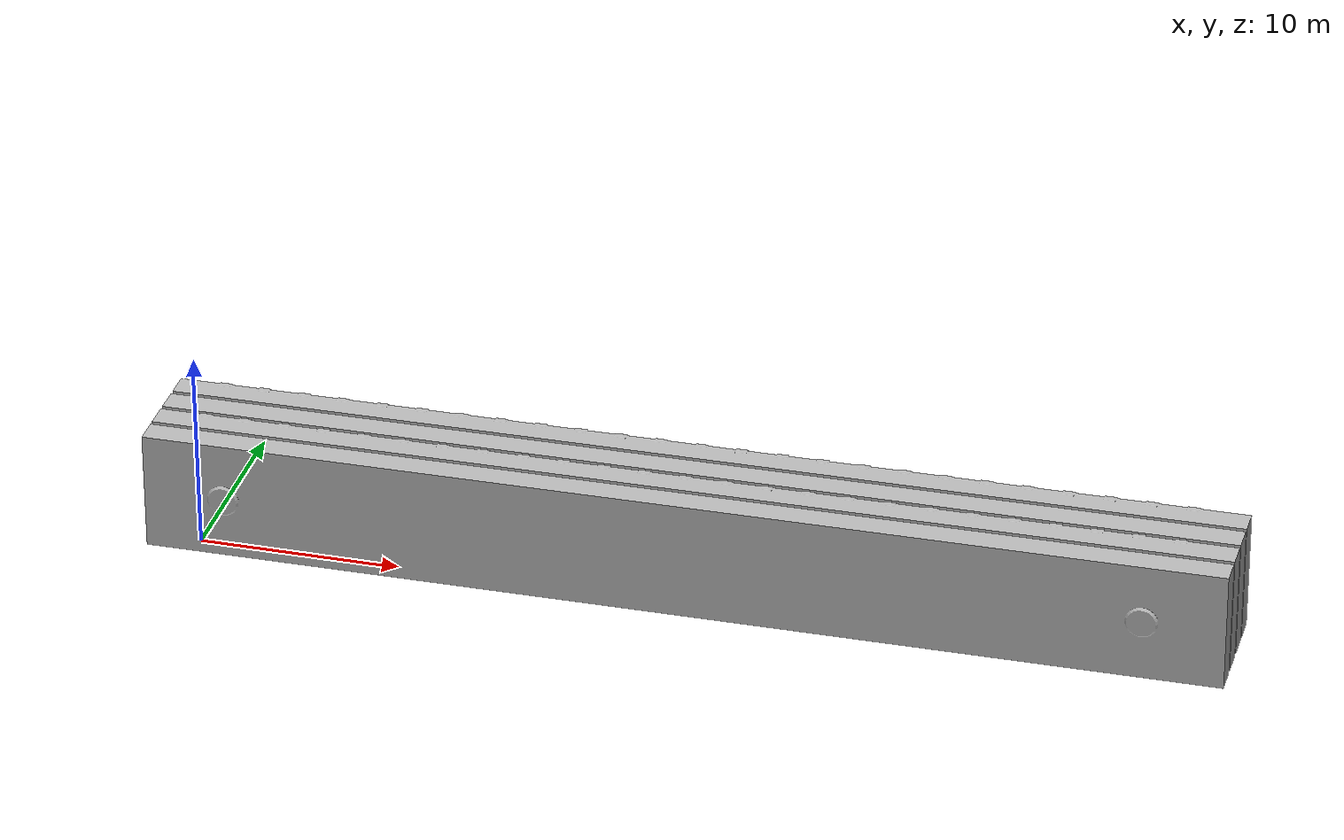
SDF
<?xml version="1.0"?>
<sdf version="1.6">
  <model name="thermal_grease_can">
    <link name="link">
      <inertial><mass>1.44</mass><inertia><ixx>0.00192</ixx><ixy>0</ixy><ixz>0</ixz><iyy>0.00800</iyy><iyz>0</iyz><izz>0.00800</izz></inertia></inertial>
      <collision name="collision"><geometry><mesh><uri>model://thermal_grease_can/meshes/meter_closed.dae</uri><scale>2 2 2</scale></mesh></geometry><surface><friction><ode><mu>1.0</mu><mu2>1.0</mu2></ode></friction><contact><ode><kp>1e6</kp><kd>1.0</kd><min_depth>0.001</min_depth><max_vel>0.01</max_vel></ode></contact></surface></collision>
      <visual name="imported_tool_mesh"><geometry><mesh><uri>model://thermal_grease_can/meshes/meter_closed.dae</uri><scale>2 2 2</scale></mesh></geometry></visual>
    </link>
  </model>
</sdf>
